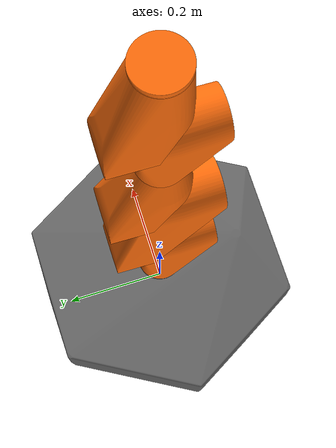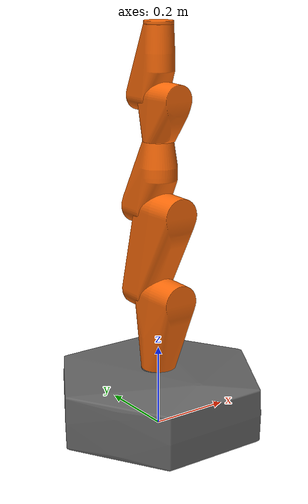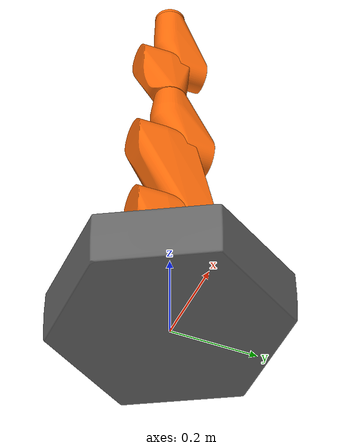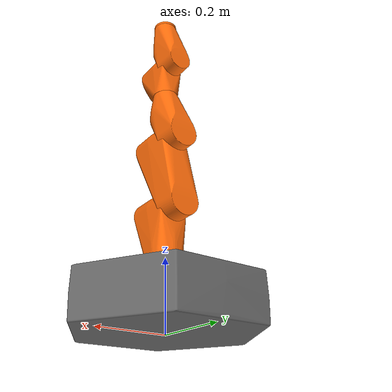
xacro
<?xml version="1.0"?>
<robot name="edo" xmlns:xacro="http://www.ros.org/wiki/xacro">
    <!-- Import Rviz colors -->
    <xacro:include filename="$(find edo_description)/urdf/materials.xacro" />
    <!--Import the edo macro -->
    <xacro:include filename="$(find edo_description)/urdf/edo.xacro"/>

    <xacro:arg name="hardware_interface" default="hardware_interface/PositionJointInterface"/>
    <xacro:arg name="robot_name" default="edo"/>
    <xacro:arg name="origin_xyz" default="0 0 0"/>
    <xacro:arg name="origin_rpy" default="0 0 0"/>

    <!-- Fix to world just for testing -->
    <link name="world"/>

    <gazebo reference="world">
        <static>true</static>
    </gazebo>

    <xacro:edo hardware_interface="$(arg hardware_interface)" robot_name="$(arg robot_name)" parent="world">
        <origin xyz="$(arg origin_xyz)" rpy="$(arg origin_rpy)" />
    </xacro:edo>

</robot>

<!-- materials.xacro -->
<robot>

    <material name="Black">
        <color rgba="0.0 0.0 0.0 1.0"/>
    </material>

    <material name="Blue">
        <color rgba="0.0 0.0 0.8 1.0"/>
    </material>

    <material name="Green">
        <color rgba="0.0 0.8 0.0 1.0"/>
    </material>

    <material name="Grey">
        <color rgba="0.4 0.4 0.4 1.0"/>
    </material>

    <material name="Orange">
        <color rgba="${255/255} ${108/255} ${10/255} 1.0"/>
    </material>

    <material name="Brown">
        <color rgba="${222/255} ${207/255} ${195/255} 1.0"/>
    </material>

    <material name="Red">
        <color rgba="0.8 0.0 0.0 1.0"/>
    </material>

    <material name="White">
        <color rgba="1.0 1.0 1.0 1.0"/>
    </material>

</robot>

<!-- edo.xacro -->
<robot xmlns:xacro="http://www.ros.org/wiki/xacro">

    <!-- Import all Gazebo-customization elements, including Gazebo colors -->
    <xacro:include filename="$(find edo_description)/urdf/edo.gazebo.xacro" />
    <!-- Import Transmissions -->
    <xacro:include filename="$(find edo_description)/urdf/edo.transmission.xacro" />
    <!-- Include Utilities -->
    <xacro:include filename="$(find edo_description)/urdf/utilities.xacro" />

    <!-- some constants -->
    <xacro:property name="joint_damping" value="0.5" />
    <xacro:property name="max_effort" value="300"/>
    <xacro:property name="max_velocity" value="1.5"/>

    <xacro:macro name="edo" params="parent hardware_interface robot_name *origin">

        <!--joint between {parent} and base_link-->
        <joint name="${parent}_${robot_name}_joint" type="fixed">
            <xacro:insert_block name="origin"/>
            <parent link="${parent}"/>
            <child link="${robot_name}_base_link"/>
        </joint>

        <link name="${robot_name}_base_link">
            <inertial>
                <origin xyz="0.057188 0.005983 0.05" rpy="0 0 0"/>
                <mass value="0.0785942338762368"/>
                <inertia
                        ixx="0.0123841200738068"
                        ixy="-0.000187984913202787"
                        ixz="-1.32683892634308E-06"
                        iyy="7.0169034503364E-05"
                        iyz="-9.17416945099319E-05"
                        izz="0.0123862261905614" />
            </inertial>

            <visual>
                <origin xyz="0 0 0" rpy="0 0 0"/>
                <geometry>
                    <mesh filename="package://edo_description/meshes/visual/base_link.stl"/>
                </geometry>
                <material name="Grey"/>
            </visual>

            <collision>
                <origin xyz="0 0 0" rpy="0 0 0"/>
                <geometry>
                    <mesh filename="package://edo_description/meshes/collision/base_link.stl"/>
                </geometry>
                <material name="Grey"/>
            </collision>

        </link>

        <!-- joint between base_link and base_spacer -->
        <joint name="${robot_name}_joint_spacer" type="fixed">
            <parent link="${robot_name}_base_link"/>
            <child link="${robot_name}_base_spacer_link"/>
            <origin xyz="0 0 0.135" rpy="0 0 0"/>
        </joint>

        <link name="${robot_name}_base_spacer_link">
            <inertial>
                <origin xyz="0 0 0.005" rpy="0 0 0"/>
                <mass value="0.01"/>
                <inertia
                        ixx="0.0123841200738068"
                        ixy="-0.000187984913202787"
                        ixz="-1.32683892634308E-06"
                        iyy="7.0169034503364E-05"
                        iyz="-9.17416945099319E-05"
                        izz="0.0123862261905614" />
            </inertial>

            <visual>
                <origin xyz="0 0 0" rpy="0 0 0"/>
                <geometry>
                    <mesh filename="package://edo_description/meshes/visual/base_spacer.stl"/>
                </geometry>
                <material name="Grey"/>
            </visual>

            <collision>
                <origin xyz="0 0 0" rpy="0 0 0"/>
                <geometry>
                    <mesh filename="package://edo_description/meshes/collision/base_spacer.stl"/>
                </geometry>
                <material name="Grey"/>
            </collision>

        </link>

        <!-- joint between base_link and link_1 -->
        <joint name="${robot_name}_joint_1" type="revolute">
            <parent link="${robot_name}_base_link"/>
            <child link="${robot_name}_link_1"/>
            <origin xyz="0 0 ${0.135 + 0.202}" rpy="0 0 0"/>
            <axis xyz="0 0 1"/>
            <limit lower="${-180 * PI / 180}" upper="${180 * PI / 180}"
                   effort="${max_effort}" velocity="${max_velocity}" />
            <dynamics damping="${joint_damping}"/>
        </joint>

        <link name="${robot_name}_link_1">
            <inertial>
                <origin xyz="-0.037464 0.047260 0" rpy="0 0 0"/>
                <mass value="0.0785942338762368"/>
                <inertia
                        ixx="0.0123841200738068"
                        ixy="0.000187984913202727"
                        ixz="-1.32683892634271E-06"
                        iyy="7.01690345033622E-05"
                        iyz="9.17416945099368E-05"
                        izz="0.0123862261905615" />
            </inertial>
            <visual>
                <origin xyz="0 0 0" rpy="0 0 0"/>
                <geometry>
                    <mesh filename="package://edo_description/meshes/visual/link_1.stl"/>
                </geometry>
                <material name="Orange"/>
            </visual>
            <collision>
                <origin xyz="0 0 0" rpy="0 0 0"/>
                <geometry>
                    <mesh filename="package://edo_description/meshes/collision/link_1.stl"/>
                </geometry>
                <material name="Orange"/>
            </collision>
        </link>

        <joint name="${robot_name}_joint_2" type="revolute">
            <parent link="${robot_name}_link_1"/>
            <child link="${robot_name}_link_2"/>
            <origin xyz="0 0 0" rpy="${PI /2} 0 0"/>
            <axis xyz="0 0 -1"/>
            <limit lower="${-113 * PI / 180}" upper="${113 * PI / 180}"
                   effort="${max_effort}" velocity="${max_velocity}" />
            <dynamics damping="${joint_damping}"/>
        </joint>

        <link name="${robot_name}_link_2">
            <inertial>
                <origin xyz="-0.016423 0.031803 -0.045948" rpy="0 0 0"/>
                <mass value="0.0785942338762368"/>
                <inertia
                        ixx="0.0122070242873091"
                        ixy="0.000930596667670934"
                        ixz="-0.0011486325666074"
                        iyy="0.007576065624266"
                        iyz="0.0059380539105297"
                        izz="0.00505742538729646" />
            </inertial>
            <visual>
                <origin xyz="0 0 0" rpy="0 0 0"/>
                <geometry>
                    <mesh filename="package://edo_description/meshes/visual/link_2.stl"/>
                </geometry>
                <material name="Orange"/>
            </visual>

            <collision>
                <origin xyz="0 0 0" rpy="0 0 0"/>
                <geometry>
                    <mesh filename="package://edo_description/meshes/collision/link_2.stl"/>
                </geometry>
                <material name="Orange"/>
            </collision>
        </link>

        <joint name="${robot_name}_joint_3" type="revolute">
            <parent link="${robot_name}_link_2"/>
            <child link="${robot_name}_link_3"/>
            <origin xyz="0 0.2105 0" rpy="0 ${PI} ${PI}"/>
            <axis xyz="0 0 1"/>
            <limit lower="${-113 * PI / 180}" upper="${113 * PI / 180}"
                   effort="${max_effort}" velocity="${max_velocity}" />
            <dynamics damping="${joint_damping}"/>
        </joint>

        <link name="${robot_name}_link_3">
            <inertial>
                <origin xyz="-0.031475 0.013100 0.000326" rpy="0 0 0"/>
                <mass value="0.0785942338762368"/>
                <inertia
                        ixx="0.0123841200738068"
                        ixy="0.000187984913202718"
                        ixz="1.32683892634266E-06"
                        iyy="7.01690345033619E-05"
                        iyz="-9.17416945099381E-05"
                        izz="0.0123862261905615" />
            </inertial>

            <visual>
                <origin xyz="0 0 0" rpy="0 0 0"/>
                <geometry>
                    <mesh filename="package://edo_description/meshes/visual/link_3.stl"/>
                </geometry>
                <material name="Orange"/>
            </visual>

            <collision>
                <origin xyz="0 0 0" rpy="0 0 0"/>
                <geometry>
                    <mesh filename="package://edo_description/meshes/collision/link_3.stl"/>
                </geometry>
                <material name="Orange"/>
            </collision>

        </link>

        <joint name="${robot_name}_joint_4" type="revolute">
            <parent link="${robot_name}_link_3"/>
            <child link="${robot_name}_link_4"/>
            <origin xyz="0 -0.268 0" rpy="${PI / 2} 0 0"/>
            <axis xyz="0 0 1"/>
            <limit lower="${-180 * PI / 180}" upper="${180 * PI / 180}"
                   effort="${max_effort}" velocity="${max_velocity}" />
            <dynamics damping="${joint_damping}"/>
        </joint>

        <link name="${robot_name}_link_4">
            <inertial>
                <origin xyz="0.033909 0.000544 -0.013765" rpy="0 0 0"/>
                <mass value="0.0785942338762368"/>
                <inertia
                        ixx="0.0123841200738068"
                        ixy="-1.32683892634285E-06"
                        ixz="0.000187984913202718"
                        iyy="0.0123862261905615"
                        iyz="9.17416945099506E-05"
                        izz="7.01690345033621E-05" />
            </inertial>

            <visual>
                <origin xyz="0 0 0" rpy="0 0 0"/>
                <geometry>
                    <mesh filename="package://edo_description/meshes/visual/link_4.stl"/>
                </geometry>
                <material name="Orange"/>
            </visual>

            <collision>
                <origin xyz="0 0 0" rpy="0 0 0"/>
                <geometry>
                    <mesh filename="package://edo_description/meshes/collision/link_4.stl"/>
                </geometry>
                <material name="Orange"/>
            </collision>
        </link>

        <joint name="${robot_name}_joint_5" type="revolute">
            <parent link="${robot_name}_link_4"/>
            <child link="${robot_name}_link_5"/>
            <origin xyz="0 0 0" rpy="0 0 0"/>
            <axis xyz="0 1 0"/>
            <limit lower="${-104 * PI / 180}" upper="${104 * PI / 180}"
                   effort="${max_effort}" velocity="${max_velocity}" />
            <dynamics damping="${joint_damping}"/>
        </joint>

        <link name="${robot_name}_link_5">
            <inertial>
                <origin xyz="0.029485 -0.000458 0.026739" rpy="0 0 0"/>
                <mass value="0.0785942338762368"/>
                <inertia
                        ixx="0.0123841200738068"
                        ixy="1.32683892634191E-06"
                        ixz="0.000187984913202582"
                        iyy="0.0123862261905615"
                        iyz="-9.17416945099552E-05"
                        izz="7.01690345033581E-05" />
            </inertial>

            <visual>
                <origin xyz="0 0 0" rpy="0 0 0"/>
                <geometry>
                    <mesh filename="package://edo_description/meshes/visual/link_5.stl"/>
                </geometry>
                <material name="Orange"/>
            </visual>

            <collision>
                <origin xyz="0 0 0" rpy="0 0 0"/>
                <geometry>
                    <mesh filename="package://edo_description/meshes/collision/link_5.stl"/>
                </geometry>
                <material name="Orange"/>
            </collision>
        </link>

        <joint name="${robot_name}_joint_6" type="revolute">
            <parent link="${robot_name}_link_5"/>
            <child link="${robot_name}_link_6"/>
            <origin xyz="0 0 0.1745" rpy="0 0 0"/>
            <axis xyz="0 0 1"/>
            <!-- MoveIt has problems with these huge limits -->
            <!--limit lower="${-2700 * PI / 180}" upper="${2700 * PI / 180}"
                   effort="${max_effort}" velocity="${max_velocity}" /-->
            <limit lower="${-270 * PI / 180}" upper="${270 * PI / 180}"
                   effort="${max_effort}" velocity="${max_velocity}" />
            <dynamics damping="${joint_damping}"/>
        </joint>

        <link name="${robot_name}_link_6">
            <inertial>
                <origin xyz="0.000007 -0.009327 0.000006" rpy="0 0 0"/>
                <mass value="0.0279702497322662"/>
                <inertia
                        ixx="7.63464744598253E-06"
                        ixy="1.89204959067221E-10"
                        ixz="5.32970316039599E-09"
                        iyy="1.45744912344428E-05"
                        iyz="1.08958003890421E-10"
                        izz="7.62871791498103E-06" />
            </inertial>

            <visual>
                <origin xyz="0 0 0" rpy="0 0 0"/>
                <geometry>
                    <mesh filename="package://edo_description/meshes/visual/link_6.stl"/>
                </geometry>
                <material name="Orange"/>
            </visual>

            <collision>
                <origin xyz="0 0 0" rpy="0 0 0"/>
                <geometry>
                    <mesh filename="package://edo_description/meshes/collision/link_6.stl"/>
                </geometry>
                <material name="Orange"/>
            </collision>
        </link>

        <joint name="${robot_name}_joint_ee" type="fixed">
            <parent link="${robot_name}_link_6"/>
            <child link="${robot_name}_link_ee"/>
            <origin xyz="0 0 0" rpy="0 0 0"/>
        </joint>

        <link name="${robot_name}_link_ee">
        </link>

        <!--Extensions -->
        <xacro:edo_gazebo robot_name="${robot_name}" />
        <xacro:edo_transmission hardware_interface="${hardware_interface}"/>

    </xacro:macro>

</robot>

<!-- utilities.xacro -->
<robot xmlns:xacro="http://www.ros.org/wiki/xacro">

    <xacro:property name="PI" value="3.1415926535897931"/>

    <!-- The following macros are adapted from the LWR 4 definitions of the RCPRG - https://github.com/RCPRG-ros-pkg/lwr_robot -->
    <!--Little helper macros to define the inertia matrix needed for links.-->
    <!--Cuboid-->
    <xacro:macro name="cuboid_inertia" params="width height length mass">
        <inertia ixx="${mass * (height * height + length * length) / 12)}"
                 iyy="${mass * (width * width + length * length) / 12)}"
                 izz="${mass * (width * width + height * height) / 12)}"
                 ixy="0" iyz="0" ixz="0"/>
    </xacro:macro>

    <!--Cylinder: length is along the y-axis! -->
    <xacro:macro name="cylinder_inertia" params="radius length mass">
        <inertia ixx="${mass * (3 * radius * radius + length * length) / 12)}"
                 iyy="${mass * radius* radius / 2)}"
                 izz="${mass * (3 * radius * radius + length * length) / 12)}"
                 ixy="0" iyz="0" ixz="0"/>
    </xacro:macro>

</robot>
